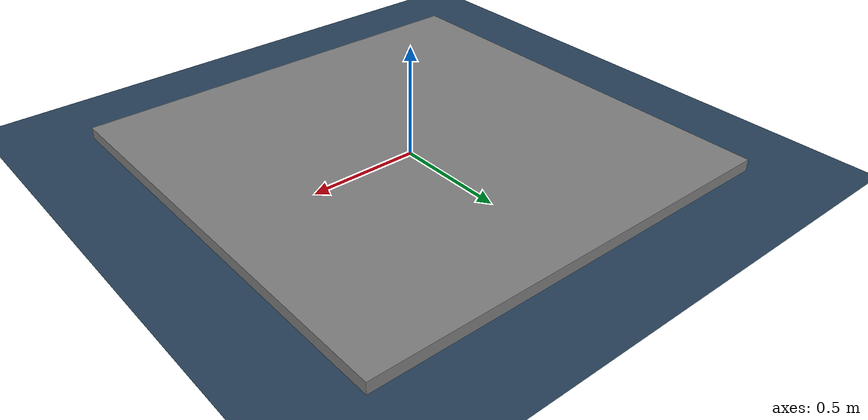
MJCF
<?xml version="1.0" encoding="utf-8"?>

<mujoco>
	<compiler angle="radian" />

	<option timestep="0.001" tolerance="1e-9" integrator="implicitfast" iterations="100" ls_iterations="100">
		<flag warmstart="enable" multiccd="enable"/>
	</option>

	<size njmax="500" nconmax="100" />

	<visual>
		<global offwidth="1280" offheight="720"/>
		<quality shadowsize="4096" offsamples="4"/>
		<scale contactwidth="0.01" contactheight="0.2" framewidth="0.025" framelength="0.75"/>
	</visual>

	<asset>
		<texture type="skybox" builtin="gradient" rgb1="0.45 0.6 0.807" rgb2="0.46 0.87 0.58" width="32" height="32"/>
		<texture name="grid" type="2d" builtin="checker" rgb1=".1 .2 .3" rgb2=".2 .3 .4" width="300" height="300"/>
		<texture name="checkers" type="2d" builtin="checker" rgb1="0 0 0" rgb2="1 1 1" width="300" height="300"/>

		<material name="grid_mat" texture="grid" texrepeat="8 8" reflectance="0.2"/>
		<material name="checkers_mat" texture="checkers" texrepeat="8 8" reflectance="0"/>

		<mesh name="base_link" file="{robot_mesh_dir}/base_link.stl"/>
		<mesh name="link_1" file="{robot_mesh_dir}/link_1.stl"/>
		<mesh name="link_2" file="{robot_mesh_dir}/link_2.stl"/>
		<mesh name="link_3" file="{robot_mesh_dir}/link_3.stl"/>
		<mesh name="link_4" file="{robot_mesh_dir}/link_4.stl"/>
		<mesh name="link_5" file="{robot_mesh_dir}/link_5.stl"/>
		<mesh name="link_6" file="{robot_mesh_dir}/link_6.stl"/>
	</asset>

	<actuator>
		<position name="pos_actuator_1" joint="joint_1" kp="9000" kv="400" ctrlrange="-2.87979 2.87979" forcerange="-1000 1000"/>
		<position name="pos_actuator_2" joint="joint_2" kp="9000" kv="400" ctrlrange="-1.91986 1.91986" forcerange="-1000 1000"/>
		<position name="pos_actuator_3" joint="joint_3" kp="9000" kv="400" ctrlrange="-1.22173 1.91986" forcerange="-1000 1000"/>
		<position name="pos_actuator_4" joint="joint_4" kp="2500" kv="100" ctrlrange="-2.79252 2.79252" forcerange="-500 500"/>
		<position name="pos_actuator_5" joint="joint_5" kp="2500" kv="100" ctrlrange="-2.09440 2.09440" forcerange="-500 500"/>
		<position name="pos_actuator_6" joint="joint_6" kp="2500" kv="100" ctrlrange="-3.14200 3.14200" forcerange="-500 500"/>
    </actuator>

	<sensor>
		<force name="force_sensor" site="site:sensor"/>
		<torque name="torque_sensor" site="site:sensor"/>
	</sensor>

	<worldbody>
		<geom name="floor" size="5 5 5" type="plane" material="grid_mat"/>

		<body pos="0 0 0" name="table0">
			<geom size="1 1 0.05" type="box" name="table" mass="2000" material="checkers_mat" friction="0 0 0"></geom>
			<site name="site:table" pos="0 0 0" size = "0.02 0.02 0.02" type="box" rgba="1 1 0 0"></site>
		</body>

		<!-- Robot, task bodies, and task camera are injected by the VLA scene builder. -->
		{object_block}

		<light directional="true" ambient="0.2 0.2 0.2" diffuse="0.8 0.8 0.8" specular="0.3 0.3 0.3" castshadow="false" pos="0 0 4" dir="0 0 -1" name="light0"></light>
	</worldbody>
</mujoco>
